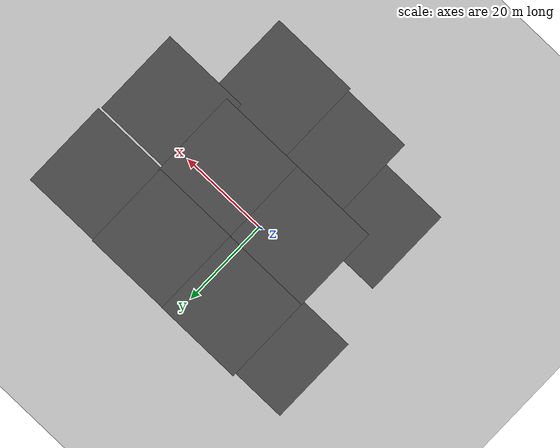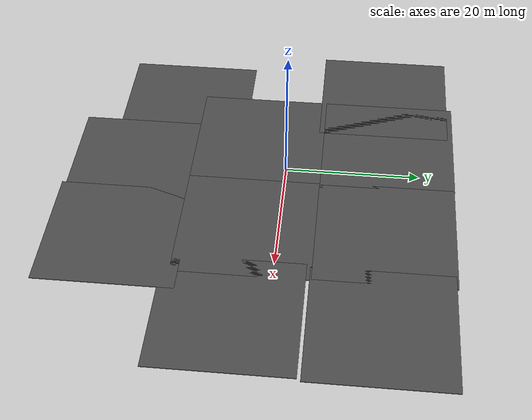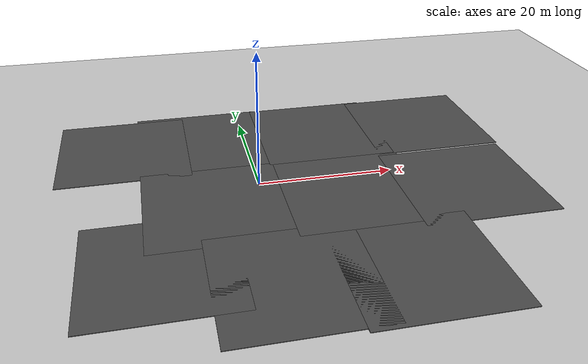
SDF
<sdf version="1.6">
 <world name="default">
  <light name="sun" type="directional">
   <pose>0 0 10 0 -0 0</pose>
   <diffuse>0.8 0.8 0.8 1</diffuse>
   <specular>0.1 0.1 0.1 1</specular>
   <attenuation>
    <range>1000</range>
    <constant>0.9</constant>
    <linear>0.01</linear>
    <quadratic>0.001</quadratic>
   </attenuation>
   <direction>-0.5 0.5 -1</direction>
  </light>
  <model name="ground_plane">
   <static>1</static>
   <link name="link">
    <collision name="collision">
     <geometry><plane><normal>0 0 1</normal><size>100 100</size></plane></geometry>
     <surface><friction><ode><mu>100</mu><mu2>50</mu2></ode></friction></surface>
    </collision>
    <visual name="visual">
     <cast_shadows>0</cast_shadows>
     <geometry><plane><normal>0 0 1</normal><size>100 100</size></plane></geometry>
     <material>
      <script><uri>file://media/materials/scripts/gazebo.material</uri><name>Gazebo/Grey</name></script>
     </material>
    </visual>
   </link>
  </model>
  <gravity>0 0 -9.8</gravity>
  <magnetic_field>6e-06 2.3e-05 -4.2e-05</magnetic_field>
  <atmosphere type="adiabatic"/>
  <physics name="default_physics" default="0" type="ode">
   <max_step_size>0.001</max_step_size>
   <real_time_factor>1</real_time_factor>
   <real_time_update_rate>1000</real_time_update_rate>
  </physics>
  <scene><ambient>0.4 0.4 0.4 1</ambient><background>0.7 0.7 0.7 1</background><shadows>1</shadows></scene>
  <spherical_coordinates>
   <surface_model>EARTH_WGS84</surface_model>
   <latitude_deg>0</latitude_deg>
   <longitude_deg>0</longitude_deg>
   <elevation>0</elevation>
   <heading_deg>0</heading_deg>
  </spherical_coordinates>
  <light name="user_point_light_0" type="point">
   <pose>-4.84118 11.5701 1 0 -0 0</pose>
   <diffuse>0.5 0.5 0.5 1</diffuse>
   <specular>0.1 0.1 0.1 1</specular>
   <attenuation>
    <range>20</range>
    <constant>0.5</constant>
    <linear>0.01</linear>
    <quadratic>0.001</quadratic>
   </attenuation>
   <cast_shadows>0</cast_shadows>
   <direction>0 0 -1</direction>
  </light>
  <light name="user_point_light_1" type="point">
   <pose>12.0084 13.7457 1 0 -0 0</pose>
   <diffuse>0.5 0.5 0.5 1</diffuse>
   <specular>0.1 0.1 0.1 1</specular>
   <attenuation>
    <range>20</range>
    <constant>0.5</constant>
    <linear>0.01</linear>
    <quadratic>0.001</quadratic>
   </attenuation>
   <cast_shadows>0</cast_shadows>
   <direction>0 0 -1</direction>
  </light>
  <light name="user_point_light_2" type="point">
   <pose>11.0374 4.53966 1 0 -0 0</pose>
   <diffuse>0.5 0.5 0.5 1</diffuse>
   <specular>0.1 0.1 0.1 1</specular>
   <attenuation>
    <range>20</range>
    <constant>0.5</constant>
    <linear>0.01</linear>
    <quadratic>0.001</quadratic>
   </attenuation>
   <cast_shadows>0</cast_shadows>
   <direction>0 0 -1</direction>
  </light>
  <light name="user_point_light_3" type="point">
   <pose>-1.20123 -0.415503 1 0 -0 0</pose>
   <diffuse>0.5 0.5 0.5 1</diffuse>
   <specular>0.1 0.1 0.1 1</specular>
   <attenuation>
    <range>20</range>
    <constant>0.5</constant>
    <linear>0.01</linear>
    <quadratic>0.001</quadratic>
   </attenuation>
   <cast_shadows>0</cast_shadows>
   <direction>0 0 -1</direction>
  </light>
  <model name="asphalt_plane">
   <static>1</static>
   <link name="link">
    <collision name="collision"><geometry><box><size>20 20 0.1</size></box></geometry></collision>
    <visual name="visual">
     <cast_shadows>0</cast_shadows>
     <geometry><box><size>20 20 0.1</size></box></geometry>
     <material>
      <script>
       <uri>model://asphalt_plane/materials/scripts</uri>
       <uri>model://asphalt_plane/materials/textures</uri>
       <name>vrc/asphalt</name>
      </script>
     </material>
    </visual>
   </link>
   <pose>-6.97708 15.3255 0 0 -0 0</pose>
  </model>
  <model name="asphalt_plane_clone">
   <static>1</static>
   <link name="link">
    <collision name="collision"><geometry><box><size>20 20 0.1</size></box></geometry></collision>
    <visual name="visual">
     <cast_shadows>0</cast_shadows>
     <geometry><box><size>20 20 0.1</size></box></geometry>
     <material>
      <script>
       <uri>model://asphalt_plane/materials/scripts</uri>
       <uri>model://asphalt_plane/materials/textures</uri>
       <name>vrc/asphalt</name>
      </script>
     </material>
    </visual>
   </link>
   <pose>12.5969 15.262 0 0 -0 0</pose>
  </model>
  <model name="asphalt_plane_clone_0">
   <static>1</static>
   <link name="link">
    <collision name="collision"><geometry><box><size>20 20 0.1</size></box></geometry></collision>
    <visual name="visual">
     <cast_shadows>0</cast_shadows>
     <geometry><box><size>20 20 0.1</size></box></geometry>
     <material>
      <script>
       <uri>model://asphalt_plane/materials/scripts</uri>
       <uri>model://asphalt_plane/materials/textures</uri>
       <name>vrc/asphalt</name>
      </script>
     </material>
    </visual>
   </link>
   <pose>-6.99043 -4.3024 0 0 -0 0</pose>
  </model>
  <model name="asphalt_plane_clone_1">
   <static>1</static>
   <link name="link">
    <collision name="collision"><geometry><box><size>20 20 0.1</size></box></geometry></collision>
    <visual name="visual">
     <cast_shadows>0</cast_shadows>
     <geometry><box><size>20 20 0.1</size></box></geometry>
     <material>
      <script>
       <uri>model://asphalt_plane/materials/scripts</uri>
       <uri>model://asphalt_plane/materials/textures</uri>
       <name>vrc/asphalt</name>
      </script>
     </material>
    </visual>
   </link>
   <pose>12.8078 -4.29181 0 0 -0 0</pose>
  </model>
  <model name="asphalt_plane_clone_2">
   <static>1</static>
   <link name="link">
    <collision name="collision"><geometry><box><size>20 20 0.1</size></box></geometry></collision>
    <visual name="visual">
     <cast_shadows>0</cast_shadows>
     <geometry><box><size>20 20 0.1</size></box></geometry>
     <material>
      <script>
       <uri>model://asphalt_plane/materials/scripts</uri>
       <uri>model://asphalt_plane/materials/textures</uri>
       <name>vrc/asphalt</name>
      </script>
     </material>
    </visual>
   </link>
   <pose>30.1769 15.0302 0 0 -0 0</pose>
  </model>
  <model name="asphalt_plane_clone_3">
   <static>1</static>
   <link name="link">
    <collision name="collision"><geometry><box><size>20 20 0.1</size></box></geometry></collision>
    <visual name="visual">
     <cast_shadows>0</cast_shadows>
     <geometry><box><size>20 20 0.1</size></box></geometry>
     <material>
      <script>
       <uri>model://asphalt_plane/materials/scripts</uri>
       <uri>model://asphalt_plane/materials/textures</uri>
       <name>vrc/asphalt</name>
      </script>
     </material>
    </visual>
   </link>
   <pose>29.766 -5.46164 0 0 -0 0</pose>
  </model>
  <model name="asphalt_plane_clone_4">
   <static>1</static>
   <link name="link">
    <collision name="collision"><geometry><box><size>20 20 0.1</size></box></geometry></collision>
    <visual name="visual">
     <cast_shadows>0</cast_shadows>
     <geometry><box><size>20 20 0.1</size></box></geometry>
     <material>
      <script>
       <uri>model://asphalt_plane/materials/scripts</uri>
       <uri>model://asphalt_plane/materials/textures</uri>
       <name>vrc/asphalt</name>
      </script>
     </material>
    </visual>
   </link>
   <pose>16.0522 -23.0591 0 0 -0 0</pose>
  </model>
  <model name="asphalt_plane_clone_5">
   <static>1</static>
   <link name="link">
    <collision name="collision"><geometry><box><size>20 20 0.1</size></box></geometry></collision>
    <visual name="visual">
     <cast_shadows>0</cast_shadows>
     <geometry><box><size>20 20 0.1</size></box></geometry>
     <material>
      <script>
       <uri>model://asphalt_plane/materials/scripts</uri>
       <uri>model://asphalt_plane/materials/textures</uri>
       <name>vrc/asphalt</name>
      </script>
     </material>
    </visual>
   </link>
   <pose>0.249839 -22.4401 0 0 -0 0</pose>
  </model>
  <model name="asphalt_plane_clone_6">
   <static>1</static>
   <link name="link">
    <collision name="collision"><geometry><box><size>20 20 0.1</size></box></geometry></collision>
    <visual name="visual">
     <cast_shadows>0</cast_shadows>
     <geometry><box><size>20 20 0.1</size></box></geometry>
     <material>
      <script>
       <uri>model://asphalt_plane/materials/scripts</uri>
       <uri>model://asphalt_plane/materials/textures</uri>
       <name>vrc/asphalt</name>
      </script>
     </material>
    </visual>
   </link>
   <pose>-15.16 -16.9574 0 0 -0 0</pose>
  </model>
  <model name="asphalt_plane_clone_7">
   <static>1</static>
   <link name="link">
    <collision name="collision"><geometry><box><size>20 20 0.1</size></box></geometry></collision>
    <visual name="visual">
     <cast_shadows>0</cast_shadows>
     <geometry><box><size>20 20 0.1</size></box></geometry>
     <material>
      <script>
       <uri>model://asphalt_plane/materials/scripts</uri>
       <uri>model://asphalt_plane/materials/textures</uri>
       <name>vrc/asphalt</name>
      </script>
     </material>
    </visual>
   </link>
   <pose>-19.365 14.5738 0 0 -0 0</pose>
  </model>
  <light name="user_point_light_4" type="point">
   <pose>0.316105 -10.2236 1 0 -0 0</pose>
   <diffuse>0.5 0.5 0.5 1</diffuse>
   <specular>0.1 0.1 0.1 1</specular>
   <attenuation>
    <range>20</range>
    <constant>0.5</constant>
    <linear>0.01</linear>
    <quadratic>0.001</quadratic>
   </attenuation>
   <cast_shadows>0</cast_shadows>
   <direction>0 0 -1</direction>
  </light>
 </world>
</sdf>
